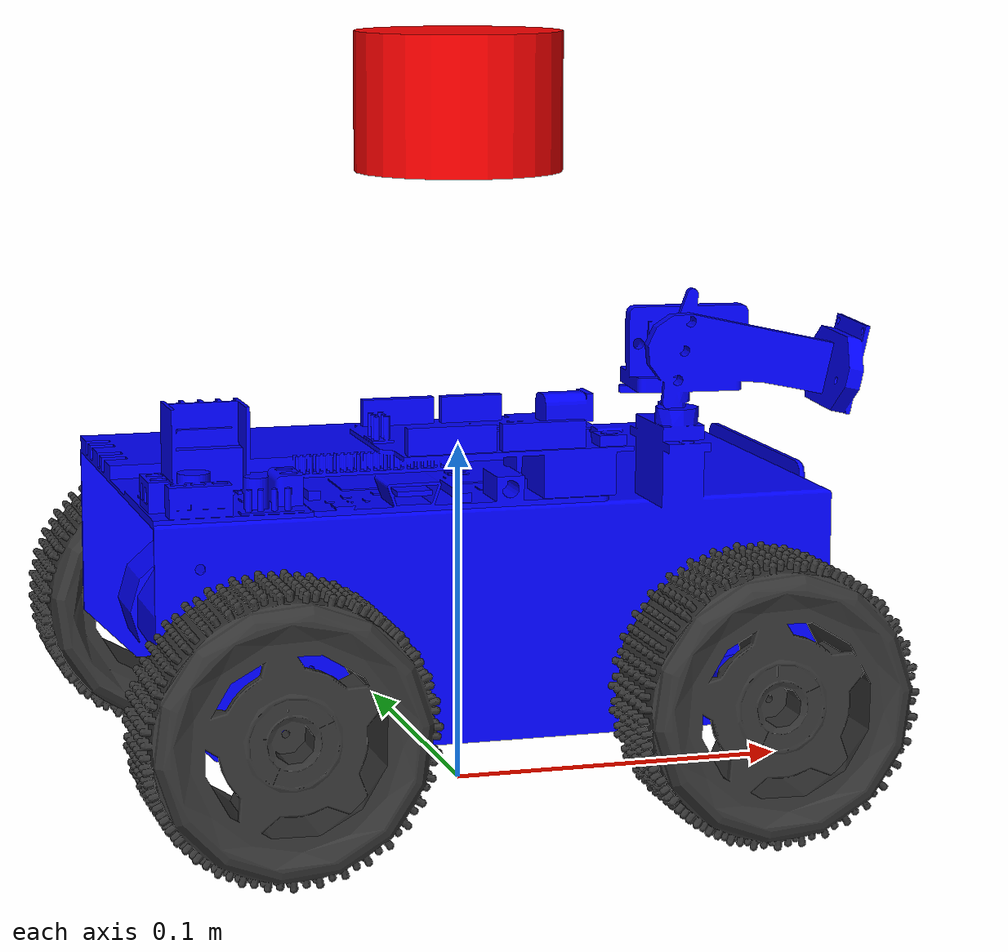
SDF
<?xml version="1.0" ?>
<sdf version="1.6">
  <model name="simple_test_robot">

    <!-- Base link - using axioma chassis mesh -->
    <link name="base_link">
      <inertial>
        <mass>15.0</mass>
        <inertia>
          <ixx>0.8</ixx>
          <ixy>0</ixy>
          <ixz>0</ixz>
          <iyy>0.8</iyy>
          <iyz>0</iyz>
          <izz>0.8</izz>
        </inertia>
      </inertial>

      <collision name="collision">
        <geometry>
          <mesh>
            <scale>1 1 1</scale>
            <uri>model://axioma_v2/meshes/collision/chasis.dae</uri>
          </mesh>
        </geometry>
      </collision>

      <visual name="visual">
        <geometry>
          <mesh>
            <scale>1 1 1</scale>
            <uri>model://axioma_v2/meshes/visual/chasis.stl</uri>
          </mesh>
        </geometry>
        <material>
          <ambient>0.0 0.0 1.0 1</ambient>
          <diffuse>0.0 0.0 1.0 1</diffuse>
        </material>
      </visual>
    </link>

    <!-- Front Left wheel -->
    <link name="wheel_1">
      <pose>0.06442 0.07385 0.04068 3.141516 -0 3.141516</pose>
      <inertial>
        <mass>1.5</mass>
        <inertia>
          <ixx>0.03</ixx>
          <ixy>0</ixy>
          <ixz>0</ixz>
          <iyy>0.03</iyy>
          <iyz>0</iyz>
          <izz>0.03</izz>
        </inertia>
      </inertial>

      <collision name="collision">
        <geometry>
          <mesh>
            <scale>1 1 1</scale>
            <uri>model://axioma_v2/meshes/collision/llanta.dae</uri>
          </mesh>
        </geometry>
        <surface>
          <friction>
            <ode>
              <mu>1.0</mu>
              <mu2>1.0</mu2>
              <slip1>0.0</slip1>
              <slip2>0.0</slip2>
            </ode>
          </friction>
        </surface>
      </collision>

      <visual name="visual">
        <geometry>
          <mesh>
            <scale>1 1 1</scale>
            <uri>model://axioma_v2/meshes/visual/llanta.stl</uri>
          </mesh>
        </geometry>
        <material>
          <ambient>0.2 0.2 0.2 1</ambient>
          <diffuse>0.2 0.2 0.2 1</diffuse>
        </material>
      </visual>
    </link>

    <!-- Rear Left wheel -->
    <link name="wheel_2">
      <pose>-0.071224 0.07385 0.04068 3.141516 -0 3.141516</pose>
      <inertial>
        <mass>1.5</mass>
        <inertia>
          <ixx>0.03</ixx>
          <ixy>0</ixy>
          <ixz>0</ixz>
          <iyy>0.03</iyy>
          <iyz>0</iyz>
          <izz>0.03</izz>
        </inertia>
      </inertial>

      <collision name="collision">
        <geometry>
          <mesh>
            <scale>1 1 1</scale>
            <uri>model://axioma_v2/meshes/collision/llanta.dae</uri>
          </mesh>
        </geometry>
        <surface>
          <friction>
            <ode>
              <mu>1.0</mu>
              <mu2>1.0</mu2>
              <slip1>0.0</slip1>
              <slip2>0.0</slip2>
            </ode>
          </friction>
        </surface>
      </collision>

      <visual name="visual">
        <geometry>
          <mesh>
            <scale>1 1 1</scale>
            <uri>model://axioma_v2/meshes/visual/llanta.stl</uri>
          </mesh>
        </geometry>
        <material>
          <ambient>0.2 0.2 0.2 1</ambient>
          <diffuse>0.2 0.2 0.2 1</diffuse>
        </material>
      </visual>
    </link>

    <!-- Rear Right wheel -->
    <link name="wheel_3">
      <pose>-0.071224 -0.0625 0.04068 0 0 3.141592</pose>
      <inertial>
        <mass>1.5</mass>
        <inertia>
          <ixx>0.03</ixx>
          <ixy>0</ixy>
          <ixz>0</ixz>
          <iyy>0.03</iyy>
          <iyz>0</iyz>
          <izz>0.03</izz>
        </inertia>
      </inertial>

      <collision name="collision">
        <geometry>
          <mesh>
            <scale>1 1 1</scale>
            <uri>model://axioma_v2/meshes/collision/llanta.dae</uri>
          </mesh>
        </geometry>
        <surface>
          <friction>
            <ode>
              <mu>1.0</mu>
              <mu2>1.0</mu2>
              <slip1>0.0</slip1>
              <slip2>0.0</slip2>
            </ode>
          </friction>
        </surface>
      </collision>

      <visual name="visual">
        <geometry>
          <mesh>
            <scale>1 1 1</scale>
            <uri>model://axioma_v2/meshes/visual/llanta.stl</uri>
          </mesh>
        </geometry>
        <material>
          <ambient>0.2 0.2 0.2 1</ambient>
          <diffuse>0.2 0.2 0.2 1</diffuse>
        </material>
      </visual>
    </link>

    <!-- Front Right wheel -->
    <link name="wheel_4">
      <pose>0.064423 -0.0625 0.04068 0 0 3.141592</pose>
      <inertial>
        <mass>1.5</mass>
        <inertia>
          <ixx>0.03</ixx>
          <ixy>0</ixy>
          <ixz>0</ixz>
          <iyy>0.03</iyy>
          <iyz>0</iyz>
          <izz>0.03</izz>
        </inertia>
      </inertial>

      <collision name="collision">
        <geometry>
          <mesh>
            <scale>1 1 1</scale>
            <uri>model://axioma_v2/meshes/collision/llanta.dae</uri>
          </mesh>
        </geometry>
        <surface>
          <friction>
            <ode>
              <mu>1.0</mu>
              <mu2>1.0</mu2>
              <slip1>0.0</slip1>
              <slip2>0.0</slip2>
            </ode>
          </friction>
        </surface>
      </collision>

      <visual name="visual">
        <geometry>
          <mesh>
            <scale>1 1 1</scale>
            <uri>model://axioma_v2/meshes/visual/llanta.stl</uri>
          </mesh>
        </geometry>
        <material>
          <ambient>0.2 0.2 0.2 1</ambient>
          <diffuse>0.2 0.2 0.2 1</diffuse>
        </material>
      </visual>
    </link>

    <!-- Laser link -->
    <link name="laser_link">
      <pose>0 0 0.2 0 0 0</pose>
      <inertial>
        <mass>0.1</mass>
        <inertia>
          <ixx>0.001</ixx>
          <ixy>0</ixy>
          <ixz>0</ixz>
          <iyy>0.001</iyy>
          <iyz>0</iyz>
          <izz>0.001</izz>
        </inertia>
      </inertial>

      <collision name="collision">
        <geometry>
          <cylinder>
            <radius>0.03</radius>
            <length>0.04</length>
          </cylinder>
        </geometry>
      </collision>

      <visual name="visual">
        <geometry>
          <cylinder>
            <radius>0.03</radius>
            <length>0.04</length>
          </cylinder>
        </geometry>
        <material>
          <ambient>1.0 0.0 0.0 1</ambient>
          <diffuse>1.0 0.0 0.0 1</diffuse>
        </material>
      </visual>

      <!-- Laser sensor -->
      <sensor name="laser" type="ray">
        <pose>0 0 0 0 0 0</pose>
        <always_on>true</always_on>
        <visualize>true</visualize>
        <update_rate>10</update_rate>
        <ray>
          <scan>
            <horizontal>
              <samples>360</samples>
              <resolution>1</resolution>
              <min_angle>-3.14159</min_angle>
              <max_angle>3.14159</max_angle>
            </horizontal>
          </scan>
          <range>
            <min>0.12</min>
            <max>10.0</max>
            <resolution>0.01</resolution>
          </range>
        </ray>

        <plugin name="laser_controller" filename="libgazebo_ros_ray_sensor.so">
          <ros>
            <remapping>~/out:=scan</remapping>
          </ros>
          <output_type>sensor_msgs/LaserScan</output_type>
          <frame_name>laser_link</frame_name>
        </plugin>
      </sensor>
    </link>

    <!-- Joints -->
    <joint name="wheel1_joint" type="revolute">
      <parent>base_link</parent>
      <child>wheel_1</child>
      <axis>
        <xyz>0 1 0</xyz>
      </axis>
    </joint>

    <joint name="wheel2_joint" type="revolute">
      <parent>base_link</parent>
      <child>wheel_2</child>
      <axis>
        <xyz>0 1 0</xyz>
      </axis>
    </joint>

    <joint name="wheel3_joint" type="revolute">
      <parent>base_link</parent>
      <child>wheel_3</child>
      <axis>
        <xyz>0 -1 0</xyz>
      </axis>
    </joint>

    <joint name="wheel4_joint" type="revolute">
      <parent>base_link</parent>
      <child>wheel_4</child>
      <axis>
        <xyz>0 -1 0</xyz>
      </axis>
    </joint>

    <joint name="laser_joint" type="fixed">
      <parent>base_link</parent>
      <child>laser_link</child>
    </joint>

    <!-- 4WD Skid-Steer drive plugin -->
    <plugin name="skid_steer_drive" filename="libgazebo_ros_diff_drive.so">
      <update_rate>50</update_rate>

      <!-- Number of wheel pairs -->
      <num_wheel_pairs>2</num_wheel_pairs>

      <!-- wheels0 (front) -->
      <left_joint>wheel1_joint</left_joint>
      <right_joint>wheel4_joint</right_joint>

      <!-- wheels1 (rear) -->
      <left_joint>wheel2_joint</left_joint>
      <right_joint>wheel3_joint</right_joint>

      <!-- kinematics -->
      <wheel_separation>0.4</wheel_separation>
      <wheel_separation>0.4</wheel_separation>
      <wheel_diameter>0.1</wheel_diameter>
      <wheel_diameter>0.1</wheel_diameter>

      <!-- limits -->
      <max_wheel_torque>50</max_wheel_torque>
      <max_wheel_acceleration>5.0</max_wheel_acceleration>

      <!-- output -->
      <publish_odom>true</publish_odom>
      <publish_odom_tf>true</publish_odom_tf>
      <publish_wheel_tf>false</publish_wheel_tf>
      <odometry_frame>odom</odometry_frame>
      <robot_base_frame>base_link</robot_base_frame>
    </plugin>

  </model>
</sdf>
